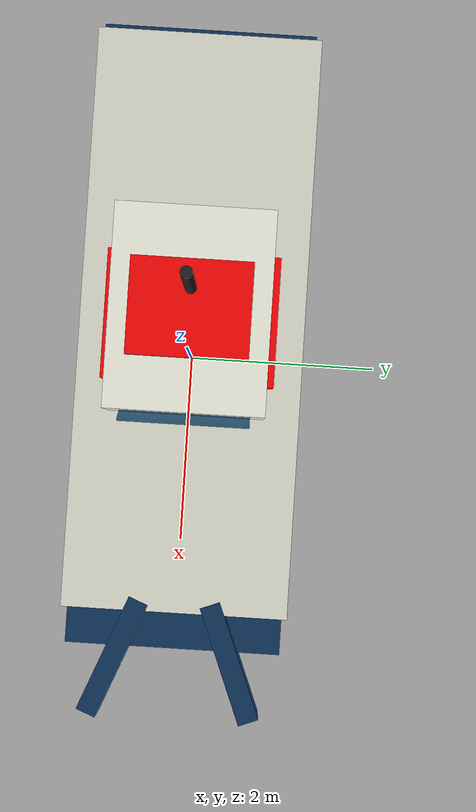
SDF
<?xml version="1.0" ?>
<sdf version="1.8">
  <model name="target_vessel">
    <pose>0 0 0.42 0 0 0</pose>
    <link name="hull">
      <enable_wind>true</enable_wind>
      <inertial>
        <mass>180</mass>
        <inertia>
          <ixx>110</ixx>
          <iyy>420</iyy>
          <izz>500</izz>
        </inertia>
      </inertial>

      <collision name="hull_collision">
        <pose>0 0 0 0 0 0</pose>
        <geometry>
          <box>
            <size>7.0 2.6 0.9</size>
          </box>
        </geometry>
      </collision>

      <visual name="lower_hull">
        <pose>-0.2 0 -0.2 0 0 0</pose>
        <geometry>
          <box>
            <size>6.7 2.3 0.55</size>
          </box>
        </geometry>
        <material>
          <ambient>0.05 0.12 0.2 1</ambient>
          <diffuse>0.06 0.2 0.36 1</diffuse>
          <specular>0.18 0.25 0.32 1</specular>
        </material>
      </visual>

      <visual name="upper_hull">
        <pose>-0.35 0 0.18 0 0 0</pose>
        <geometry>
          <box>
            <size>6.2 2.4 0.35</size>
          </box>
        </geometry>
        <material>
          <ambient>0.72 0.72 0.68 1</ambient>
          <diffuse>0.88 0.88 0.82 1</diffuse>
          <specular>0.2 0.2 0.18 1</specular>
        </material>
      </visual>

      <visual name="bow_left">
        <pose>3.25 0.62 0.0 0 0 0.38</pose>
        <geometry>
          <box>
            <size>1.3 0.22 0.75</size>
          </box>
        </geometry>
        <material>
          <ambient>0.05 0.12 0.2 1</ambient>
          <diffuse>0.06 0.2 0.36 1</diffuse>
        </material>
      </visual>

      <visual name="bow_right">
        <pose>3.25 -0.62 0.0 0 0 -0.38</pose>
        <geometry>
          <box>
            <size>1.3 0.22 0.75</size>
          </box>
        </geometry>
        <material>
          <ambient>0.05 0.12 0.2 1</ambient>
          <diffuse>0.06 0.2 0.36 1</diffuse>
        </material>
      </visual>

      <visual name="cabin">
        <pose>-0.4 0 0.85 0 0 0</pose>
        <geometry>
          <box>
            <size>2.1 1.65 1.25</size>
          </box>
        </geometry>
        <material>
          <ambient>0.86 0.86 0.82 1</ambient>
          <diffuse>0.96 0.96 0.9 1</diffuse>
        </material>
      </visual>

      <visual name="bridge_window">
        <pose>0.68 0 1.0 0 0.25 0</pose>
        <geometry>
          <box>
            <size>0.04 1.35 0.55</size>
          </box>
        </geometry>
        <material>
          <ambient>0.03 0.12 0.2 0.8</ambient>
          <diffuse>0.04 0.28 0.46 0.8</diffuse>
          <specular>0.8 0.9 1 1</specular>
        </material>
      </visual>

      <visual name="mast">
        <pose>-0.6 0 2.1 0 0 0</pose>
        <geometry>
          <cylinder>
            <radius>0.06</radius>
            <length>2.2</length>
          </cylinder>
        </geometry>
        <material>
          <ambient>0.08 0.08 0.08 1</ambient>
          <diffuse>0.12 0.12 0.12 1</diffuse>
        </material>
      </visual>

      <!-- Visual-only hostile identity plates. They are intentionally local
           features and do not alter collision, inertia or control. -->
      <visual name="hostile_identity_roof">
        <pose>-0.4 0 1.52 0 0 0</pose>
        <geometry><box><size>1.0 1.25 0.10</size></box></geometry>
        <material>
          <ambient>0.8 0.01 0.01 1</ambient>
          <diffuse>1.0 0.02 0.02 1</diffuse>
          <emissive>0.35 0 0 1</emissive>
        </material>
      </visual>
      <visual name="hostile_identity_port">
        <pose>-0.35 0.86 0.72 0 0 0</pose>
        <geometry><box><size>1.35 0.08 0.42</size></box></geometry>
        <material>
          <ambient>0.8 0.01 0.01 1</ambient>
          <diffuse>1.0 0.02 0.02 1</diffuse>
          <emissive>0.3 0 0 1</emissive>
        </material>
      </visual>
      <visual name="hostile_identity_starboard">
        <pose>-0.35 -0.86 0.72 0 0 0</pose>
        <geometry><box><size>1.35 0.08 0.42</size></box></geometry>
        <material>
          <ambient>0.8 0.01 0.01 1</ambient>
          <diffuse>1.0 0.02 0.02 1</diffuse>
          <emissive>0.3 0 0 1</emissive>
        </material>
      </visual>

      <light name="navigation_light" type="point">
        <pose>-0.6 0 3.25 0 0 0</pose>
        <cast_shadows>false</cast_shadows>
        <intensity>1.2</intensity>
        <diffuse>0.2 1 0.35 1</diffuse>
        <attenuation>
          <range>30</range>
          <constant>0.7</constant>
          <linear>0.04</linear>
          <quadratic>0.002</quadratic>
        </attenuation>
      </light>
    </link>

    <plugin
      filename="gz-sim-velocity-control-system"
      name="gz::sim::systems::VelocityControl">
      <topic>/model/target_vessel/cmd_vel</topic>
      <control_linear_velocity>true</control_linear_velocity>
      <control_angular_velocity>true</control_angular_velocity>
      <initial_linear>0.8 0 0</initial_linear>
      <initial_angular>0 0 0.008</initial_angular>
    </plugin>

    <plugin
      filename="gz-sim-pose-publisher-system"
      name="gz::sim::systems::PosePublisher">
      <publish_model_pose>true</publish_model_pose>
      <publish_link_pose>false</publish_link_pose>
      <use_pose_vector_msg>false</use_pose_vector_msg>
      <topic>/target_vessel/pose</topic>
      <update_frequency>20</update_frequency>
    </plugin>

    <plugin
      filename="libBoatWaveFollower.so"
      name="gz::sim::systems::BoatWaveFollower">
      <mean_z>0.50</mean_z>
      <heave_amplitude>0.08</heave_amplitude>
      <roll_amplitude>0.035</roll_amplitude>
      <pitch_amplitude>0.028</pitch_amplitude>
      <primary_frequency>1.0</primary_frequency>
      <secondary_frequency>1.55</secondary_frequency>
      <wave_number_x>0.32</wave_number_x>
      <wave_number_y>0.20</wave_number_y>
    </plugin>
  </model>
</sdf>
